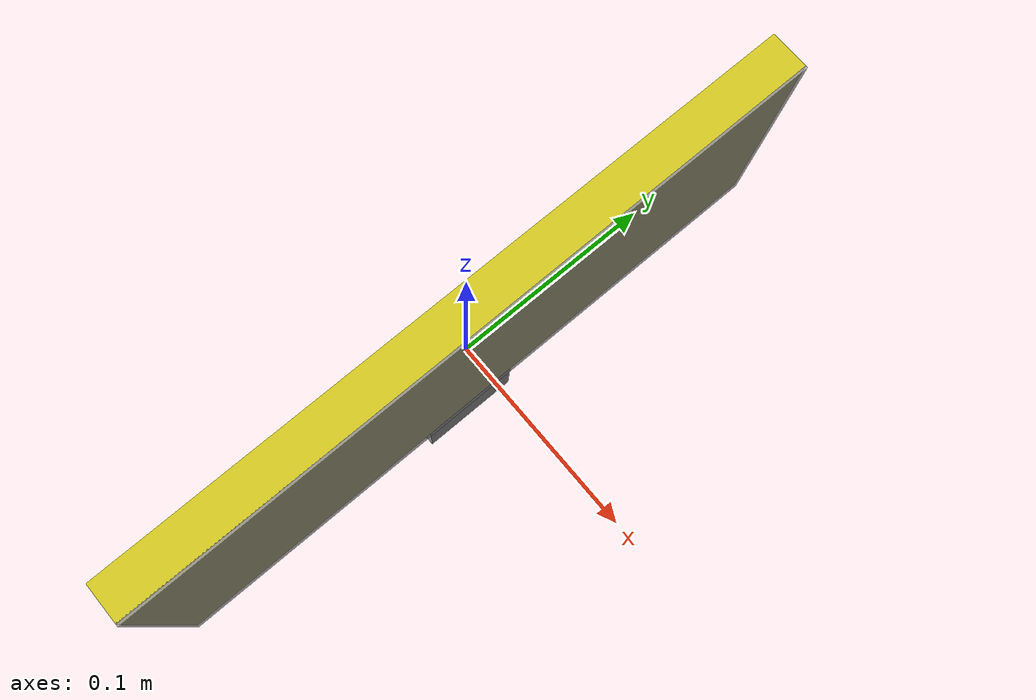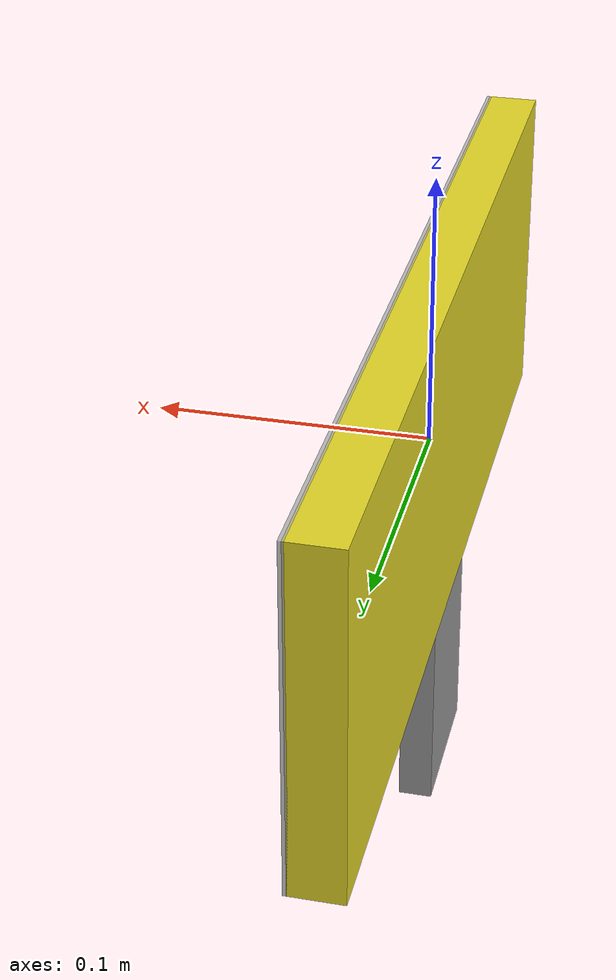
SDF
<?xml version='1.0'?>
<sdf version='1.7'>
  <model name='go_straight_sign'>
    <link name='link_0'>
      <inertial>
        <mass>1</mass>
        <inertia>
          <ixx>1</ixx>
          <ixy>0</ixy>
          <ixz>0</ixz>
          <iyy>1</iyy>
          <iyz>0</iyz>
          <izz>1</izz>
        </inertia>

      </inertial>
      <pose>0 -0 0 0 -0 0</pose>
      <self_collide>0</self_collide>
      <enable_wind>0</enable_wind>
      <kinematic>0</kinematic>
      <visual name='visual'>
        <pose>0 0 0 0 -0 0</pose>
        <geometry>
          <box>
            <size>0.01897 0.348892 0.127526</size>
          </box>
        </geometry>
        <material>
          <lighting>1</lighting>
          <script>
            <uri>file://media/materials/scripts/gazebo.material</uri>
            <name>Gazebo/Yellow</name>
          </script>
          <shader type='pixel'/>
          <emissive>0 0 0 1</emissive>
        </material>
        <transparency>0</transparency>
        <cast_shadows>1</cast_shadows>
      </visual>
      <collision name='collision'>
        <laser_retro>0</laser_retro>
        <max_contacts>10</max_contacts>
        <pose>0 0 0 0 -0 0</pose>
        <geometry>
          <box>
            <size>0.01897 0.348892 0.127526</size>
          </box>
        </geometry>

      </collision>
    </link>
    <link name='link_2'>
      <inertial>
        <mass>1</mass>
        <inertia>
          <ixx>1</ixx>
          <ixy>0</ixy>
          <ixz>0</ixz>
          <iyy>1</iyy>
          <iyz>0</iyz>
          <izz>1</izz>
        </inertia>

      </inertial>
      <pose>0.0097 -0 0 0 -0 0</pose>
      <self_collide>0</self_collide>
      <enable_wind>0</enable_wind>
      <kinematic>0</kinematic>
      <visual name='visual'>
        <pose>0 0 0 0 -0 0</pose>
        <geometry>
          <box>
            <size>0.001897 0.348892 0.127526</size>
          </box>
        </geometry>
        <material>
          <lighting>1</lighting>
          <script>
            <uri>model://go_straight_sign/materials/scripts</uri>
            <uri>model://go_straight_sign/materials/textures</uri>
            <name>straightSign/Diffuse</name>
          </script>
          <shader type='pixel'/>
          <emissive>0 0 0 1</emissive>
        </material>
        <transparency>0.2</transparency>
        <cast_shadows>1</cast_shadows>
      </visual>
      <collision name='collision'>
        <laser_retro>0</laser_retro>
        <max_contacts>10</max_contacts>
        <pose>0 0 0 0 -0 0</pose>
        <geometry>
          <box>
            <size>0.001897 0.348892 0.127526</size>
          </box>
        </geometry>

      </collision>
    </link>
    <link name='link_1'>
      <inertial>
        <mass>9.52726e-05</mass>
        <inertia>
          <ixx>1</ixx>
          <ixy>0</ixy>
          <ixz>0</ixz>
          <iyy>1</iyy>
          <iyz>0</iyz>
          <izz>1</izz>
        </inertia>
        <pose>0 0 0 0 -0 0</pose>
      </inertial>
      <pose>-0.002789 -0 -0.068834 0 -0 0</pose>
      <self_collide>0</self_collide>
      <enable_wind>0</enable_wind>
      <kinematic>0</kinematic>
      <visual name='visual'>
        <pose>0 0 0 0 -0 0</pose>
        <geometry>
          <box>
            <size>0.012242 0.055737 0.139564</size>
          </box>
        </geometry>
        <material>
          <lighting>1</lighting>
          <script>
            <uri>file://media/materials/scripts/gazebo.material</uri>
            <name>Gazebo/Grey</name>
          </script>
          <shader type='pixel'/>
          <emissive>0 0 0 1</emissive>
        </material>
        <transparency>0</transparency>
        <cast_shadows>1</cast_shadows>
      </visual>
      <collision name='collision'>
        <laser_retro>0</laser_retro>
        <max_contacts>10</max_contacts>
        <pose>0 0 0 0 -0 0</pose>
        <geometry>
          <box>
            <size>0.012242 0.055737 0.139564</size>
          </box>
        </geometry>

      </collision>
    </link>

    <static>1</static>
    <allow_auto_disable>1</allow_auto_disable>
  </model>
</sdf>
